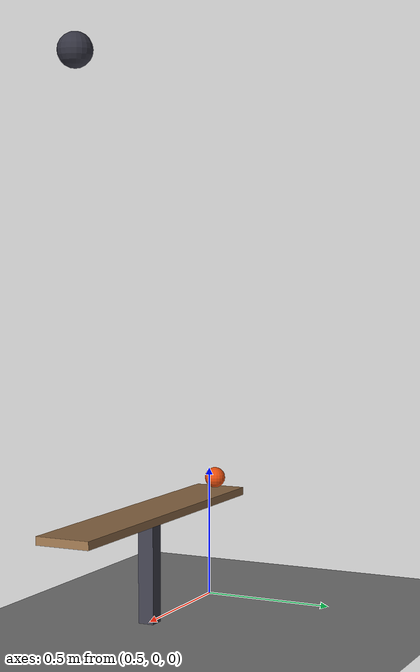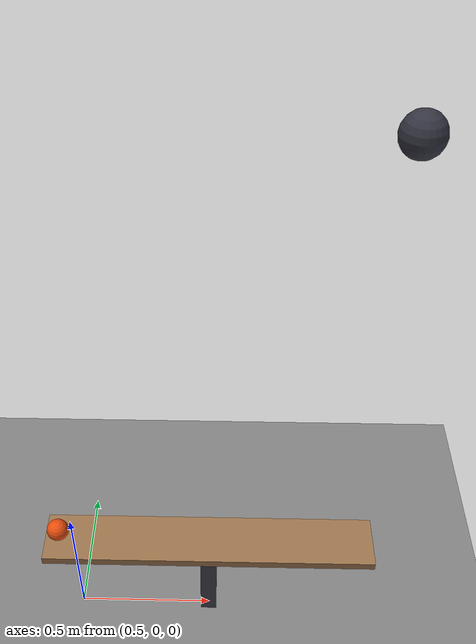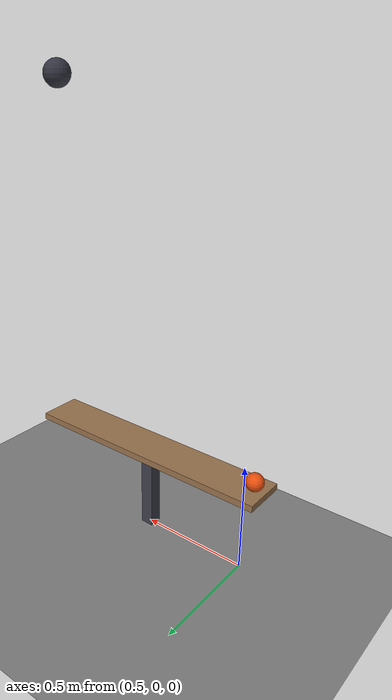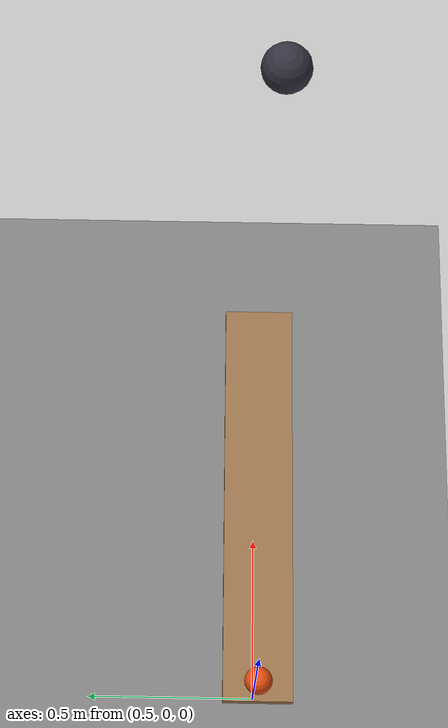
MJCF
<mujoco model="seesaw_throw">
  <compiler angle="radian"/>
  <option timestep="0.002"/>
  <worldbody>
    <geom name="floor" type="plane" size="8 8 0.1" friction="0.8 0.005 0.002"/>
    <body name="fulcrum">
      <geom name="fulcrum" type="box" pos="1 0 0.1925" size="0.03 0.03 0.1925" contype="0" conaffinity="0" rgba="0.25 0.25 0.3 1"/>
    </body>
    <body name="seesaw" pos="1 0 0.4">
      <joint name="seesaw_hinge" type="hinge" pos="0 0 0" axis="0 1 0" limited="true" range="0 0.523599"/>
      <geom name="seesaw" type="box" pos="0 0 0" size="0.6 0.1 0.015" mass="0.5" friction="0.8 0.005 0.002" rgba="0.6 0.45 0.3 1"/>
    </body>
    <body name="ball" pos="0.45 0 0.455">
      <freejoint/>
      <geom name="ball" type="sphere" pos="0 0 0" size="0.04" mass="0.1" friction="0.8 0.01 0.004" rgba="0.9 0.3 0.05 1"/>
    </body>
    <body name="weight" pos="1.5 0 2">
      <freejoint/>
      <geom name="weight" type="sphere" pos="0 0 0" size="0.06" mass="1" solref="0.01 1" rgba="0.2 0.2 0.25 1"/>
    </body>
  </worldbody>
  <keyframe>
    <key name="start" qpos="0 0.45 0 0.455 1 0 0 0 1.5 0 2 1 0 0 0" qvel="0 0 0 0 0 0 0 0 0 0 0 0 0"/>
  </keyframe>
</mujoco>
